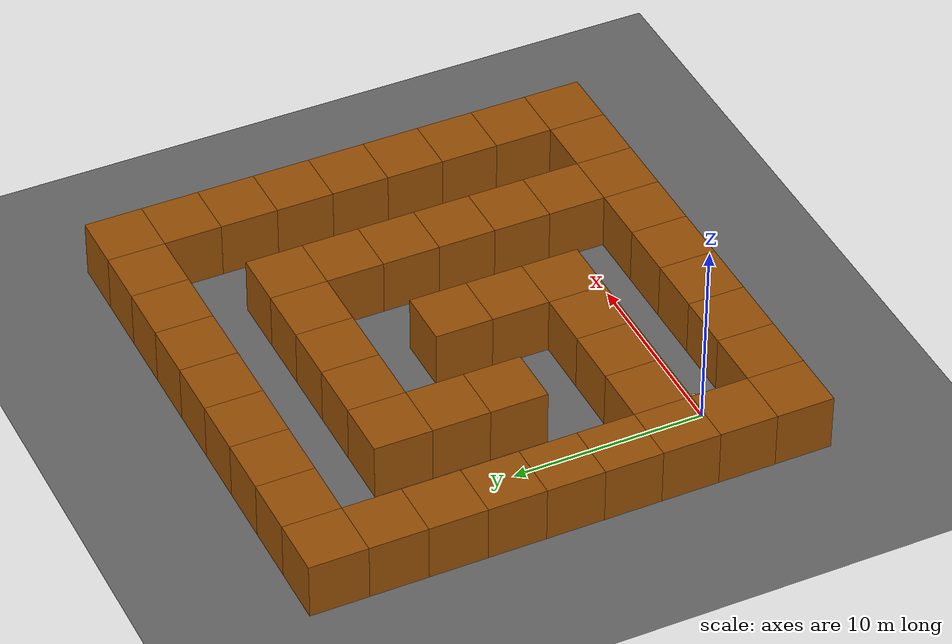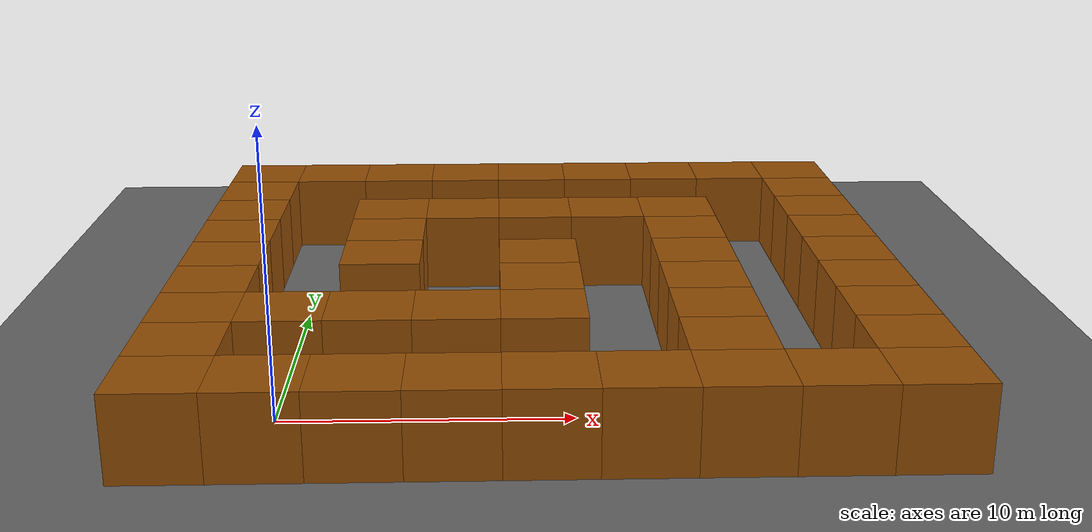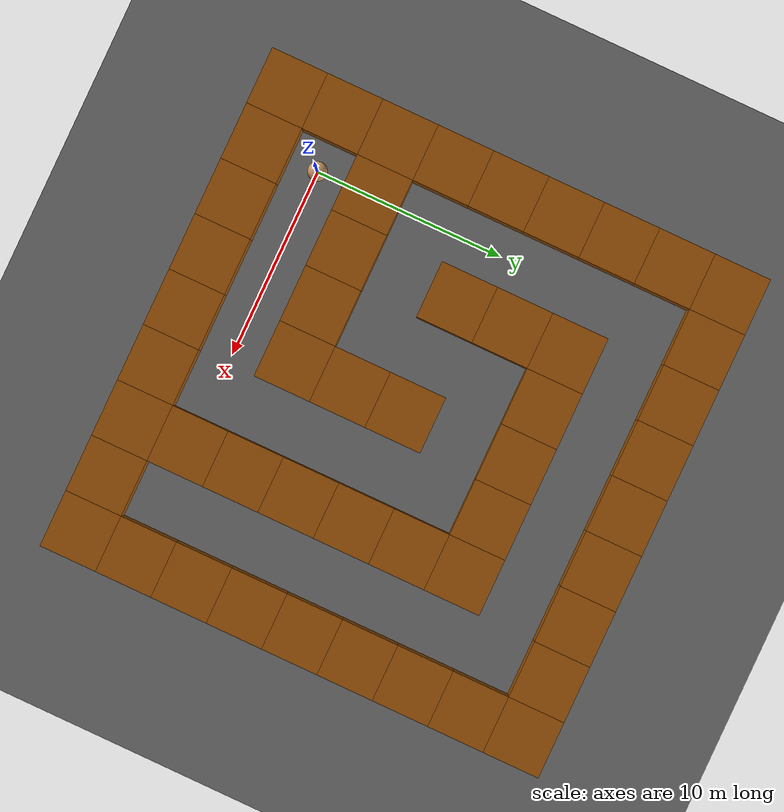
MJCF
<mujoco>
  <compiler angle="degree" coordinate="local" inertiafromgeom="true" />
  <option integrator="RK4" timestep="0.8" />
  <default>
    <joint armature="0" damping="0" limited="false" />
    <geom conaffinity="0" condim="3" density="100" friction="1 0.5 0.5" margin="0.01" rgba="0.8 0.6 0.4 1" />
  </default>
  <asset>
    <texture builtin="gradient" height="100" rgb1="1 1 1" rgb2="0 0 0" type="skybox" width="100" />
    <texture builtin="flat" height="1278" mark="cross" markrgb="1 1 1" name="texgeom" random="0.01" rgb1="0.8 0.6 0.4" rgb2="0.8 0.6 0.4" type="cube" width="127" />

    <material name="geom" texture="texgeom" texuniform="true" />
  </asset>
  <worldbody>
    <light cutoff="100" diffuse="1 1 1" dir="0 0 -1" directional="false" exponent="1" pos="3 3 1.3" specular=".1 .1 .1" />
    <geom conaffinity="1" condim="3" material="" name="floor" pos="0 0 0" rgba="0.4 0.4 0.4 1" size="40 40 40" type="plane" />
    <body name="torso" pos="0 0 0">
      <camera fovy="15" mode="fixed" name="track" pos="-0.5 0 0.6" xyaxes="0 -1 0 0 0 1" />
      <geom name="pointbody" pos="0 0 0.5" size="0.5" type="sphere" />
      <geom name="pointarrow" pos="0.5 0 0.5" size="0.5 0.1 0.1" type="box" />
      <joint axis="1 0 0" damping="40" name="ballx" pos="0 0 0" type="slide" />
      <joint axis="0 1 0" damping="40" name="bally" pos="0 0 0" type="slide" />
      <joint axis="0 0 1" damping="40" limited="false" name="rot" pos="0 0 0" type="hinge" />
    </body>
    <geom conaffinity="1" contype="1" material="" name="block_0_0" pos="-3.0 -3.0 1.5" rgba="0.59 0.31 0.02 1" size="1.5 1.5 1.5" type="box" /><geom conaffinity="1" contype="1" material="" name="block_0_1" pos="0.0 -3.0 1.5" rgba="0.59 0.31 0.02 1" size="1.5 1.5 1.5" type="box" /><geom conaffinity="1" contype="1" material="" name="block_0_2" pos="3.0 -3.0 1.5" rgba="0.59 0.31 0.02 1" size="1.5 1.5 1.5" type="box" /><geom conaffinity="1" contype="1" material="" name="block_0_3" pos="6.0 -3.0 1.5" rgba="0.59 0.31 0.02 1" size="1.5 1.5 1.5" type="box" /><geom conaffinity="1" contype="1" material="" name="block_0_4" pos="9.0 -3.0 1.5" rgba="0.59 0.31 0.02 1" size="1.5 1.5 1.5" type="box" /><geom conaffinity="1" contype="1" material="" name="block_0_5" pos="12.0 -3.0 1.5" rgba="0.59 0.31 0.02 1" size="1.5 1.5 1.5" type="box" /><geom conaffinity="1" contype="1" material="" name="block_0_6" pos="15.0 -3.0 1.5" rgba="0.59 0.31 0.02 1" size="1.5 1.5 1.5" type="box" /><geom conaffinity="1" contype="1" material="" name="block_0_7" pos="18.0 -3.0 1.5" rgba="0.59 0.31 0.02 1" size="1.5 1.5 1.5" type="box" /><geom conaffinity="1" contype="1" material="" name="block_0_8" pos="21.0 -3.0 1.5" rgba="0.59 0.31 0.02 1" size="1.5 1.5 1.5" type="box" /><geom conaffinity="1" contype="1" material="" name="block_1_0" pos="-3.0 0.0 1.5" rgba="0.59 0.31 0.02 1" size="1.5 1.5 1.5" type="box" /><geom conaffinity="1" contype="1" material="" name="block_1_6" pos="15.0 0.0 1.5" rgba="0.59 0.31 0.02 1" size="1.5 1.5 1.5" type="box" /><geom conaffinity="1" contype="1" material="" name="block_1_8" pos="21.0 0.0 1.5" rgba="0.59 0.31 0.02 1" size="1.5 1.5 1.5" type="box" /><geom conaffinity="1" contype="1" material="" name="block_2_0" pos="-3.0 3.0 1.5" rgba="0.59 0.31 0.02 1" size="1.5 1.5 1.5" type="box" /><geom conaffinity="1" contype="1" material="" name="block_2_1" pos="0.0 3.0 1.5" rgba="0.59 0.31 0.02 1" size="1.5 1.5 1.5" type="box" /><geom conaffinity="1" contype="1" material="" name="block_2_2" pos="3.0 3.0 1.5" rgba="0.59 0.31 0.02 1" size="1.5 1.5 1.5" type="box" /><geom conaffinity="1" contype="1" material="" name="block_2_3" pos="6.0 3.0 1.5" rgba="0.59 0.31 0.02 1" size="1.5 1.5 1.5" type="box" /><geom conaffinity="1" contype="1" material="" name="block_2_4" pos="9.0 3.0 1.5" rgba="0.59 0.31 0.02 1" size="1.5 1.5 1.5" type="box" /><geom conaffinity="1" contype="1" material="" name="block_2_6" pos="15.0 3.0 1.5" rgba="0.59 0.31 0.02 1" size="1.5 1.5 1.5" type="box" /><geom conaffinity="1" contype="1" material="" name="block_2_8" pos="21.0 3.0 1.5" rgba="0.59 0.31 0.02 1" size="1.5 1.5 1.5" type="box" /><geom conaffinity="1" contype="1" material="" name="block_3_0" pos="-3.0 6.0 1.5" rgba="0.59 0.31 0.02 1" size="1.5 1.5 1.5" type="box" /><geom conaffinity="1" contype="1" material="" name="block_3_4" pos="9.0 6.0 1.5" rgba="0.59 0.31 0.02 1" size="1.5 1.5 1.5" type="box" /><geom conaffinity="1" contype="1" material="" name="block_3_6" pos="15.0 6.0 1.5" rgba="0.59 0.31 0.02 1" size="1.5 1.5 1.5" type="box" /><geom conaffinity="1" contype="1" material="" name="block_3_8" pos="21.0 6.0 1.5" rgba="0.59 0.31 0.02 1" size="1.5 1.5 1.5" type="box" /><geom conaffinity="1" contype="1" material="" name="block_4_0" pos="-3.0 9.0 1.5" rgba="0.59 0.31 0.02 1" size="1.5 1.5 1.5" type="box" /><geom conaffinity="1" contype="1" material="" name="block_4_2" pos="3.0 9.0 1.5" rgba="0.59 0.31 0.02 1" size="1.5 1.5 1.5" type="box" /><geom conaffinity="1" contype="1" material="" name="block_4_4" pos="9.0 9.0 1.5" rgba="0.59 0.31 0.02 1" size="1.5 1.5 1.5" type="box" /><geom conaffinity="1" contype="1" material="" name="block_4_6" pos="15.0 9.0 1.5" rgba="0.59 0.31 0.02 1" size="1.5 1.5 1.5" type="box" /><geom conaffinity="1" contype="1" material="" name="block_4_8" pos="21.0 9.0 1.5" rgba="0.59 0.31 0.02 1" size="1.5 1.5 1.5" type="box" /><geom conaffinity="1" contype="1" material="" name="block_5_0" pos="-3.0 12.0 1.5" rgba="0.59 0.31 0.02 1" size="1.5 1.5 1.5" type="box" /><geom conaffinity="1" contype="1" material="" name="block_5_2" pos="3.0 12.0 1.5" rgba="0.59 0.31 0.02 1" size="1.5 1.5 1.5" type="box" /><geom conaffinity="1" contype="1" material="" name="block_5_6" pos="15.0 12.0 1.5" rgba="0.59 0.31 0.02 1" size="1.5 1.5 1.5" type="box" /><geom conaffinity="1" contype="1" material="" name="block_5_8" pos="21.0 12.0 1.5" rgba="0.59 0.31 0.02 1" size="1.5 1.5 1.5" type="box" /><geom conaffinity="1" contype="1" material="" name="block_6_0" pos="-3.0 15.0 1.5" rgba="0.59 0.31 0.02 1" size="1.5 1.5 1.5" type="box" /><geom conaffinity="1" contype="1" material="" name="block_6_2" pos="3.0 15.0 1.5" rgba="0.59 0.31 0.02 1" size="1.5 1.5 1.5" type="box" /><geom conaffinity="1" contype="1" material="" name="block_6_3" pos="6.0 15.0 1.5" rgba="0.59 0.31 0.02 1" size="1.5 1.5 1.5" type="box" /><geom conaffinity="1" contype="1" material="" name="block_6_4" pos="9.0 15.0 1.5" rgba="0.59 0.31 0.02 1" size="1.5 1.5 1.5" type="box" /><geom conaffinity="1" contype="1" material="" name="block_6_5" pos="12.0 15.0 1.5" rgba="0.59 0.31 0.02 1" size="1.5 1.5 1.5" type="box" /><geom conaffinity="1" contype="1" material="" name="block_6_6" pos="15.0 15.0 1.5" rgba="0.59 0.31 0.02 1" size="1.5 1.5 1.5" type="box" /><geom conaffinity="1" contype="1" material="" name="block_6_8" pos="21.0 15.0 1.5" rgba="0.59 0.31 0.02 1" size="1.5 1.5 1.5" type="box" /><geom conaffinity="1" contype="1" material="" name="block_7_0" pos="-3.0 18.0 1.5" rgba="0.59 0.31 0.02 1" size="1.5 1.5 1.5" type="box" /><geom conaffinity="1" contype="1" material="" name="block_7_8" pos="21.0 18.0 1.5" rgba="0.59 0.31 0.02 1" size="1.5 1.5 1.5" type="box" /><geom conaffinity="1" contype="1" material="" name="block_8_0" pos="-3.0 21.0 1.5" rgba="0.59 0.31 0.02 1" size="1.5 1.5 1.5" type="box" /><geom conaffinity="1" contype="1" material="" name="block_8_1" pos="0.0 21.0 1.5" rgba="0.59 0.31 0.02 1" size="1.5 1.5 1.5" type="box" /><geom conaffinity="1" contype="1" material="" name="block_8_2" pos="3.0 21.0 1.5" rgba="0.59 0.31 0.02 1" size="1.5 1.5 1.5" type="box" /><geom conaffinity="1" contype="1" material="" name="block_8_3" pos="6.0 21.0 1.5" rgba="0.59 0.31 0.02 1" size="1.5 1.5 1.5" type="box" /><geom conaffinity="1" contype="1" material="" name="block_8_4" pos="9.0 21.0 1.5" rgba="0.59 0.31 0.02 1" size="1.5 1.5 1.5" type="box" /><geom conaffinity="1" contype="1" material="" name="block_8_5" pos="12.0 21.0 1.5" rgba="0.59 0.31 0.02 1" size="1.5 1.5 1.5" type="box" /><geom conaffinity="1" contype="1" material="" name="block_8_6" pos="15.0 21.0 1.5" rgba="0.59 0.31 0.02 1" size="1.5 1.5 1.5" type="box" /><geom conaffinity="1" contype="1" material="" name="block_8_7" pos="18.0 21.0 1.5" rgba="0.59 0.31 0.02 1" size="1.5 1.5 1.5" type="box" /><geom conaffinity="1" contype="1" material="" name="block_8_8" pos="21.0 21.0 1.5" rgba="0.59 0.31 0.02 1" size="1.5 1.5 1.5" type="box" />
    <camera mode="fixed" name="world" pos="9.0000 9.0000 29.1962" xyaxes="1 0 0 0.0000 1.0000 0.0000" />
  </worldbody>
  <actuator>
    <position joint="ballx" kp="75" />
    <position joint="bally" kp="75" />
    <position joint="rot" kp="75" />
  </actuator>
</mujoco>
